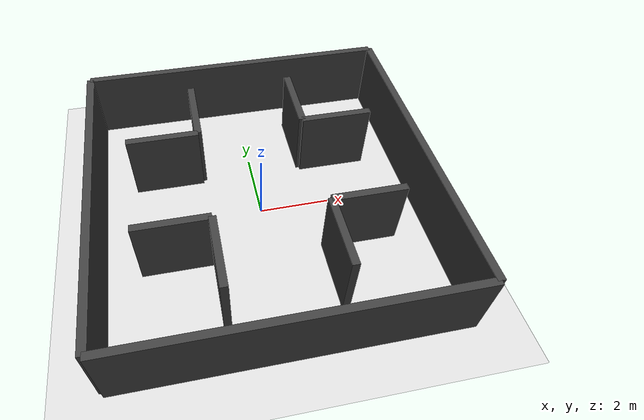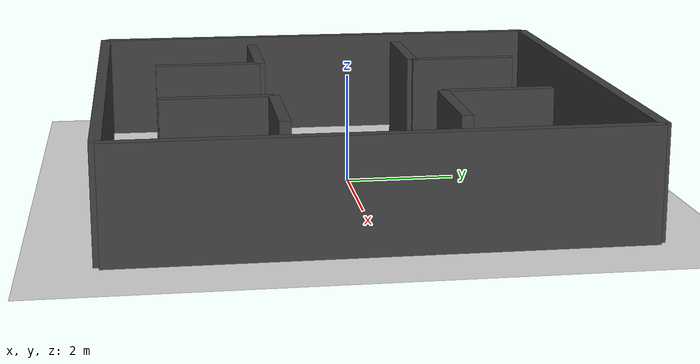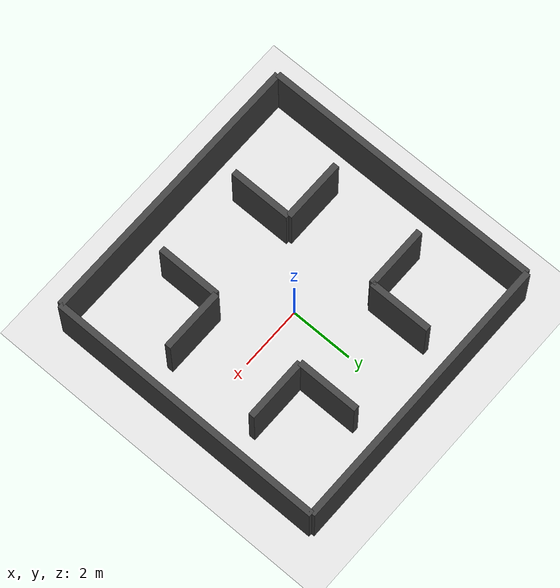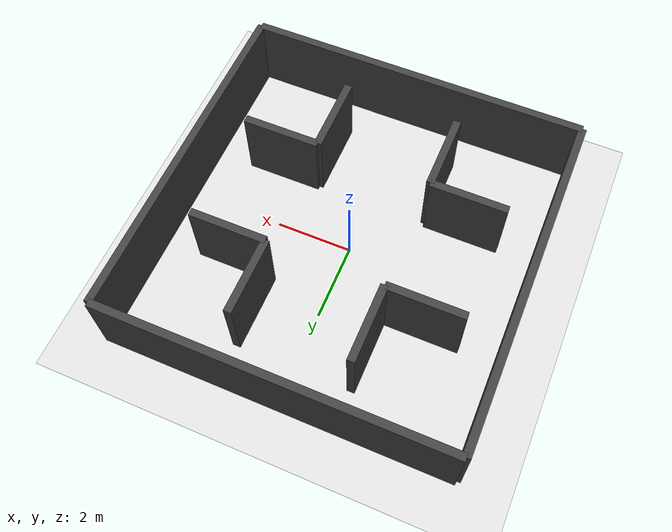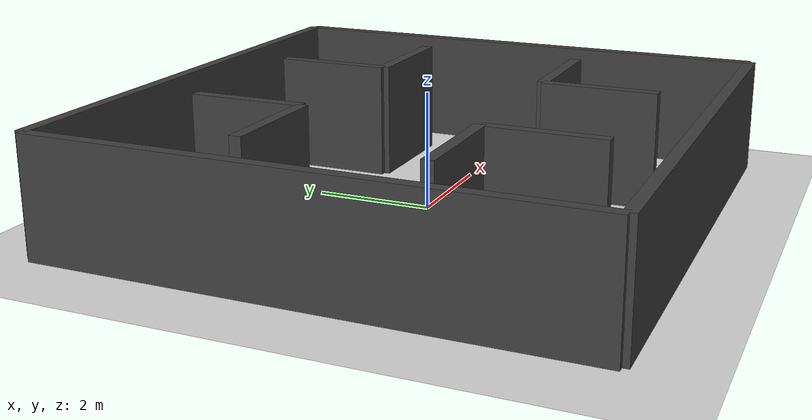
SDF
<?xml version="1.0"?>
<sdf version="1.7">
  <world name="four_rooms_safe_spawn_theme">

    <physics type="ode">
      <max_step_size>0.01</max_step_size>
      <real_time_factor>1.0</real_time_factor>
    </physics>

    <light type="directional" name="sun">
      <cast_shadows>true</cast_shadows>
      <pose>0 0 10 0 0 0</pose>
      <diffuse>0.9 0.9 0.9 1</diffuse>
      <specular>0.2 0.2 0.2 1</specular>
      <direction>-0.5 0.1 -0.9</direction>
    </light>

    <model name="ground_plane">
      <static>true</static>
      <link name="link">
        <collision name="collision">
          <geometry>
            <plane><normal>0 0 1</normal></plane>
          </geometry>
        </collision>
        <visual name="visual">
          <geometry>
            <plane>
              <normal>0 0 1</normal>
              <size>50 50</size>
            </plane>
          </geometry>
          <material>
            <ambient>0.8 0.8 0.8 1</ambient>
            <diffuse>0.85 0.85 0.85 1</diffuse>
            <specular>0.1 0.1 0.1 1</specular>
          </material>
        </visual>
      </link>
    </model>

    <model name="outer_north">
      <static>true</static>
      <link name="link">
        <pose>0 4.5 1.0 0 0 0</pose>
        <collision name="collision"><geometry><box><size>9.0 0.2 2.0</size></box></geometry></collision>
        <visual name="visual">
          <geometry><box><size>9.0 0.2 2.0</size></box></geometry>
          <material><ambient>0.2 0.2 0.2 1</ambient><diffuse>0.25 0.25 0.25 1</diffuse></material>
        </visual>
      </link>
    </model>

    <model name="outer_south">
      <static>true</static>
      <link name="link">
        <pose>0 -4.5 1.0 0 0 0</pose>
        <collision name="collision"><geometry><box><size>9.0 0.2 2.0</size></box></geometry></collision>
        <visual name="visual">
          <geometry><box><size>9.0 0.2 2.0</size></box></geometry>
          <material><ambient>0.2 0.2 0.2 1</ambient><diffuse>0.25 0.25 0.25 1</diffuse></material>
        </visual>
      </link>
    </model>

    <model name="outer_west">
      <static>true</static>
      <link name="link">
        <pose>-4.5 0 1.0 0 0 0</pose>
        <collision name="collision"><geometry><box><size>0.2 9.0 2.0</size></box></geometry></collision>
        <visual name="visual">
          <geometry><box><size>0.2 9.0 2.0</size></box></geometry>
          <material><ambient>0.2 0.2 0.2 1</ambient><diffuse>0.25 0.25 0.25 1</diffuse></material>
        </visual>
      </link>
    </model>

    <model name="outer_east">
      <static>true</static>
      <link name="link">
        <pose>4.5 0 1.0 0 0 0</pose>
        <collision name="collision"><geometry><box><size>0.2 9.0 2.0</size></box></geometry></collision>
        <visual name="visual">
          <geometry><box><size>0.2 9.0 2.0</size></box></geometry>
          <material><ambient>0.2 0.2 0.2 1</ambient><diffuse>0.25 0.25 0.25 1</diffuse></material>
        </visual>
      </link>
    </model>

    <model name="tl_inner_v">
      <static>true</static>
      <link name="link">
        <pose>-1.5 2.5 1.0 0 0 0</pose>
        <collision name="collision"><geometry><box><size>0.2 2.0 2.0</size></box></geometry></collision>
        <visual name="visual">
          <geometry><box><size>0.2 2.0 2.0</size></box></geometry>
          <material><ambient>0.2 0.2 0.2 1</ambient><diffuse>0.25 0.25 0.25 1</diffuse></material>
        </visual>
      </link>
    </model>
    <model name="tl_inner_h">
      <static>true</static>
      <link name="link">
        <pose>-2.5 1.5 1.0 0 0 0</pose>
        <collision name="collision"><geometry><box><size>2.0 0.2 2.0</size></box></geometry></collision>
        <visual name="visual">
          <geometry><box><size>2.0 0.2 2.0</size></box></geometry>
          <material><ambient>0.2 0.2 0.2 1</ambient><diffuse>0.25 0.25 0.25 1</diffuse></material>
        </visual>
      </link>
    </model>

    <model name="tr_inner_v">
      <static>true</static>
      <link name="link">
        <pose>1.5 2.5 1.0 0 0 0</pose>
        <collision name="collision"><geometry><box><size>0.2 2.0 2.0</size></box></geometry></collision>
        <visual name="visual">
          <geometry><box><size>0.2 2.0 2.0</size></box></geometry>
          <material><ambient>0.2 0.2 0.2 1</ambient><diffuse>0.25 0.25 0.25 1</diffuse></material>
        </visual>
      </link>
    </model>
    <model name="tr_inner_h">
      <static>true</static>
      <link name="link">
        <pose>2.5 1.5 1.0 0 0 0</pose>
        <collision name="collision"><geometry><box><size>2.0 0.2 2.0</size></box></geometry></collision>
        <visual name="visual">
          <geometry><box><size>2.0 0.2 2.0</size></box></geometry>
          <material><ambient>0.2 0.2 0.2 1</ambient><diffuse>0.25 0.25 0.25 1</diffuse></material>
        </visual>
      </link>
    </model>

    <model name="bl_inner_v">
      <static>true</static>
      <link name="link">
        <pose>-1.5 -2.5 1.0 0 0 0</pose>
        <collision name="collision"><geometry><box><size>0.2 2.0 2.0</size></box></geometry></collision>
        <visual name="visual">
          <geometry><box><size>0.2 2.0 2.0</size></box></geometry>
          <material><ambient>0.2 0.2 0.2 1</ambient><diffuse>0.25 0.25 0.25 1</diffuse></material>
        </visual>
      </link>
    </model>
    <model name="bl_inner_h">
      <static>true</static>
      <link name="link">
        <pose>-2.5 -1.5 1.0 0 0 0</pose>
        <collision name="collision"><geometry><box><size>2.0 0.2 2.0</size></box></geometry></collision>
        <visual name="visual">
          <geometry><box><size>2.0 0.2 2.0</size></box></geometry>
          <material><ambient>0.2 0.2 0.2 1</ambient><diffuse>0.25 0.25 0.25 1</diffuse></material>
        </visual>
      </link>
    </model>

    <model name="br_inner_v">
      <static>true</static>
      <link name="link">
        <pose>1.5 -2.5 1.0 0 0 0</pose>
        <collision name="collision"><geometry><box><size>0.2 2.0 2.0</size></box></geometry></collision>
        <visual name="visual">
          <geometry><box><size>0.2 2.0 2.0</size></box></geometry>
          <material><ambient>0.2 0.2 0.2 1</ambient><diffuse>0.25 0.25 0.25 1</diffuse></material>
        </visual>
      </link>
    </model>
    <model name="br_inner_h">
      <static>true</static>
      <link name="link">
        <pose>2.5 -1.5 1.0 0 0 0</pose>
        <collision name="collision"><geometry><box><size>2.0 0.2 2.0</size></box></geometry></collision>
        <visual name="visual">
          <geometry><box><size>2.0 0.2 2.0</size></box></geometry>
          <material><ambient>0.2 0.2 0.2 1</ambient><diffuse>0.25 0.25 0.25 1</diffuse></material>
        </visual>
      </link>
    </model>

  </world>
</sdf>
